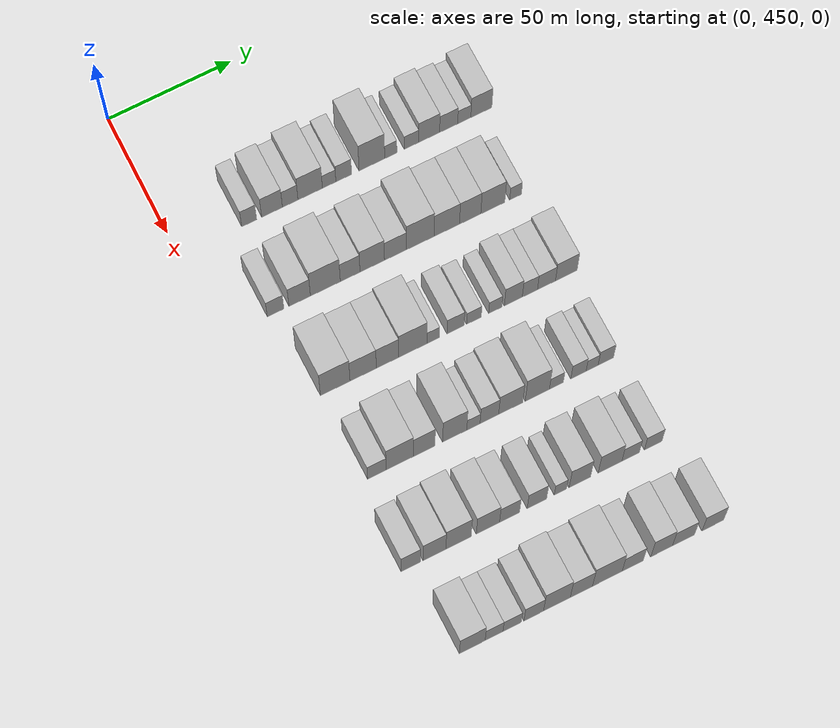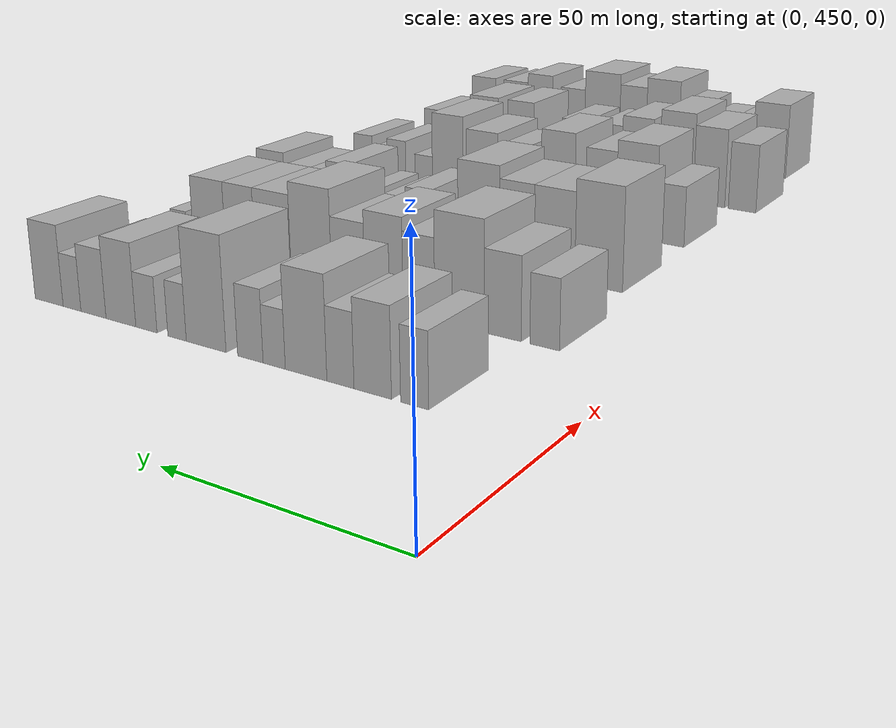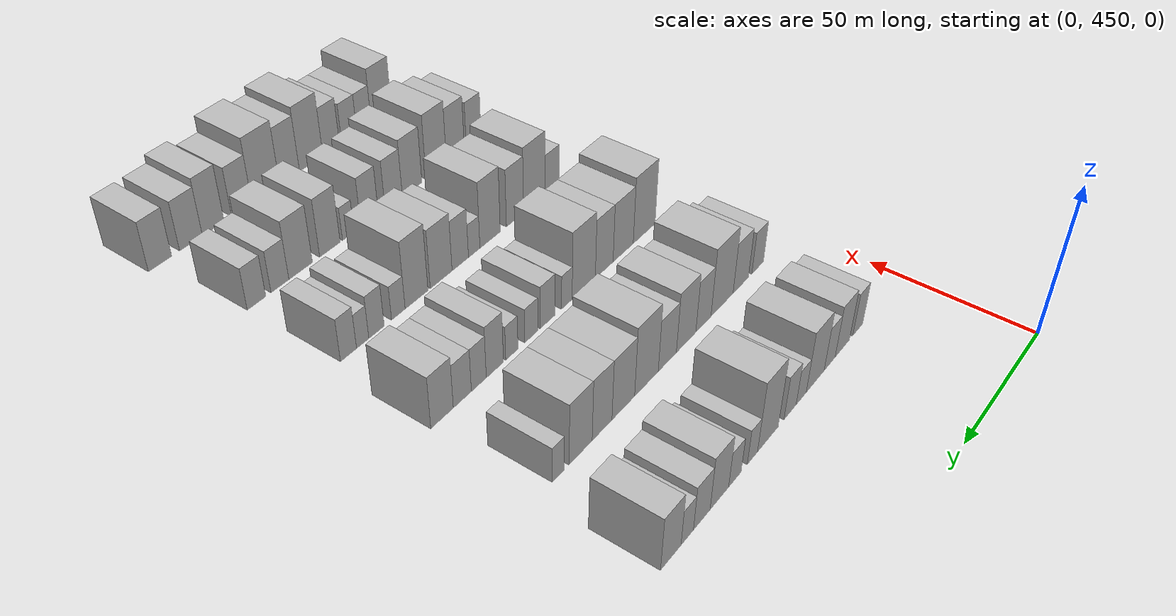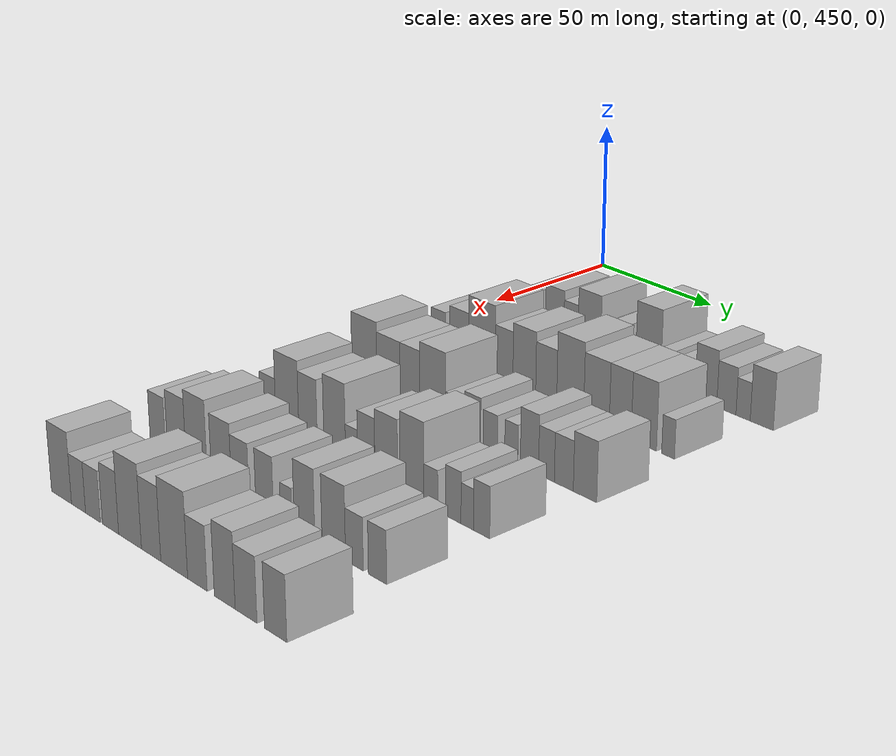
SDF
<sdf version="1.6">
 <world name="default">
  <model name="building_116">
   <static>1</static>
   <pose>50.0000 478.1447 0 0.000000 0.000000 0.000000</pose>
   <link name="link">
    <pose>0 0 7.50 0 0 0</pose>
    <collision name="collision"><geometry><box><size>20.0000 6.0451 15.0000</size></box></geometry></collision>
    <visual name="visual">
     <cast_shadows>0</cast_shadows>
     <geometry><box><size>20.0000 6.0451 15.0000</size></box></geometry>
     <material>
      <script>
       <uri>model://HANNAS_wall/materials/scripts</uri>
       <uri>model://HANNAS_wall/materials/textures</uri>
       <name>vrc/HANNAS_wall</name>
      </script>
     </material>
    </visual>
   </link>
  </model>
  <model name="building_117">
   <static>1</static>
   <pose>50.0000 487.3601 0 0.000000 0.000000 0.000000</pose>
   <link name="link">
    <pose>0 0 9.00 0 0 0</pose>
    <collision name="collision"><geometry><box><size>20.0000 8.3857 18.0000</size></box></geometry></collision>
    <visual name="visual">
     <cast_shadows>0</cast_shadows>
     <geometry><box><size>20.0000 8.3857 18.0000</size></box></geometry>
     <material>
      <script>
       <uri>model://HANNAS_wall/materials/scripts</uri>
       <uri>model://HANNAS_wall/materials/textures</uri>
       <name>vrc/HANNAS_wall</name>
      </script>
     </material>
    </visual>
   </link>
  </model>
  <model name="building_118">
   <static>1</static>
   <pose>50.0000 494.6896 0 0.000000 0.000000 0.000000</pose>
   <link name="link">
    <pose>0 0 7.50 0 0 0</pose>
    <collision name="collision"><geometry><box><size>20.0000 6.2733 15.0000</size></box></geometry></collision>
    <visual name="visual">
     <cast_shadows>0</cast_shadows>
     <geometry><box><size>20.0000 6.2733 15.0000</size></box></geometry>
     <material>
      <script>
       <uri>model://HANNAS_wall/materials/scripts</uri>
       <uri>model://HANNAS_wall/materials/textures</uri>
       <name>vrc/HANNAS_wall</name>
      </script>
     </material>
    </visual>
   </link>
  </model>
  <model name="building_119">
   <static>1</static>
   <pose>50.0000 502.7857 0 0.000000 0.000000 0.000000</pose>
   <link name="link">
    <pose>0 0 10.50 0 0 0</pose>
    <collision name="collision"><geometry><box><size>20.0000 9.9189 21.0000</size></box></geometry></collision>
    <visual name="visual">
     <cast_shadows>0</cast_shadows>
     <geometry><box><size>20.0000 9.9189 21.0000</size></box></geometry>
     <material>
      <script>
       <uri>model://HANNAS_wall/materials/scripts</uri>
       <uri>model://HANNAS_wall/materials/textures</uri>
       <name>vrc/HANNAS_wall</name>
      </script>
     </material>
    </visual>
   </link>
  </model>
  <model name="building_120">
   <static>1</static>
   <pose>50.0000 510.4785 0 0.000000 0.000000 0.000000</pose>
   <link name="link">
    <pose>0 0 6.00 0 0 0</pose>
    <collision name="collision"><geometry><box><size>20.0000 5.4667 12.0000</size></box></geometry></collision>
    <visual name="visual">
     <cast_shadows>0</cast_shadows>
     <geometry><box><size>20.0000 5.4667 12.0000</size></box></geometry>
     <material>
      <script>
       <uri>model://HANNAS_wall/materials/scripts</uri>
       <uri>model://HANNAS_wall/materials/textures</uri>
       <name>vrc/HANNAS_wall</name>
      </script>
     </material>
    </visual>
   </link>
  </model>
  <model name="building_121">
   <static>1</static>
   <pose>50.0000 516.4177 0 0.000000 0.000000 0.000000</pose>
   <link name="link">
    <pose>0 0 7.50 0 0 0</pose>
    <collision name="collision"><geometry><box><size>20.0000 6.4116 15.0000</size></box></geometry></collision>
    <visual name="visual">
     <cast_shadows>0</cast_shadows>
     <geometry><box><size>20.0000 6.4116 15.0000</size></box></geometry>
     <material>
      <script>
       <uri>model://HANNAS_wall/materials/scripts</uri>
       <uri>model://HANNAS_wall/materials/textures</uri>
       <name>vrc/HANNAS_wall</name>
      </script>
     </material>
    </visual>
   </link>
  </model>
  <model name="building_122">
   <static>1</static>
   <pose>50.0000 527.8635 0 0.000000 0.000000 0.000000</pose>
   <link name="link">
    <pose>0 0 12.00 0 0 0</pose>
    <collision name="collision"><geometry><box><size>20.0000 10.4800 24.0000</size></box></geometry></collision>
    <visual name="visual">
     <cast_shadows>0</cast_shadows>
     <geometry><box><size>20.0000 10.4800 24.0000</size></box></geometry>
     <material>
      <script>
       <uri>model://HANNAS_wall/materials/scripts</uri>
       <uri>model://HANNAS_wall/materials/textures</uri>
       <name>vrc/HANNAS_wall</name>
      </script>
     </material>
    </visual>
   </link>
  </model>
  <model name="building_123">
   <static>1</static>
   <pose>50.0000 535.6041 0 0.000000 0.000000 0.000000</pose>
   <link name="link">
    <pose>0 0 6.00 0 0 0</pose>
    <collision name="collision"><geometry><box><size>20.0000 5.0013 12.0000</size></box></geometry></collision>
    <visual name="visual">
     <cast_shadows>0</cast_shadows>
     <geometry><box><size>20.0000 5.0013 12.0000</size></box></geometry>
     <material>
      <script>
       <uri>model://HANNAS_wall/materials/scripts</uri>
       <uri>model://HANNAS_wall/materials/textures</uri>
       <name>vrc/HANNAS_wall</name>
      </script>
     </material>
    </visual>
   </link>
  </model>
  <model name="building_124">
   <static>1</static>
   <pose>50.0000 544.0753 0 0.000000 0.000000 0.000000</pose>
   <link name="link">
    <pose>0 0 6.00 0 0 0</pose>
    <collision name="collision"><geometry><box><size>20.0000 5.9410 12.0000</size></box></geometry></collision>
    <visual name="visual">
     <cast_shadows>0</cast_shadows>
     <geometry><box><size>20.0000 5.9410 12.0000</size></box></geometry>
     <material>
      <script>
       <uri>model://HANNAS_wall/materials/scripts</uri>
       <uri>model://HANNAS_wall/materials/textures</uri>
       <name>vrc/HANNAS_wall</name>
      </script>
     </material>
    </visual>
   </link>
  </model>
  <model name="building_125">
   <static>1</static>
   <pose>50.0000 551.3431 0 0.000000 0.000000 0.000000</pose>
   <link name="link">
    <pose>0 0 9.00 0 0 0</pose>
    <collision name="collision"><geometry><box><size>20.0000 8.5945 18.0000</size></box></geometry></collision>
    <visual name="visual">
     <cast_shadows>0</cast_shadows>
     <geometry><box><size>20.0000 8.5945 18.0000</size></box></geometry>
     <material>
      <script>
       <uri>model://HANNAS_wall/materials/scripts</uri>
       <uri>model://HANNAS_wall/materials/textures</uri>
       <name>vrc/HANNAS_wall</name>
      </script>
     </material>
    </visual>
   </link>
  </model>
  <model name="building_126">
   <static>1</static>
   <pose>50.0000 559.3598 0 0.000000 0.000000 0.000000</pose>
   <link name="link">
    <pose>0 0 7.50 0 0 0</pose>
    <collision name="collision"><geometry><box><size>20.0000 7.4389 15.0000</size></box></geometry></collision>
    <visual name="visual">
     <cast_shadows>0</cast_shadows>
     <geometry><box><size>20.0000 7.4389 15.0000</size></box></geometry>
     <material>
      <script>
       <uri>model://HANNAS_wall/materials/scripts</uri>
       <uri>model://HANNAS_wall/materials/textures</uri>
       <name>vrc/HANNAS_wall</name>
      </script>
     </material>
    </visual>
   </link>
  </model>
  <model name="building_127">
   <static>1</static>
   <pose>50.0000 565.7888 0 0.000000 0.000000 0.000000</pose>
   <link name="link">
    <pose>0 0 6.00 0 0 0</pose>
    <collision name="collision"><geometry><box><size>20.0000 5.4193 12.0000</size></box></geometry></collision>
    <visual name="visual">
     <cast_shadows>0</cast_shadows>
     <geometry><box><size>20.0000 5.4193 12.0000</size></box></geometry>
     <material>
      <script>
       <uri>model://HANNAS_wall/materials/scripts</uri>
       <uri>model://HANNAS_wall/materials/textures</uri>
       <name>vrc/HANNAS_wall</name>
      </script>
     </material>
    </visual>
   </link>
  </model>
  <model name="building_128">
   <static>1</static>
   <pose>50.0000 572.8296 0 0.000000 0.000000 0.000000</pose>
   <link name="link">
    <pose>0 0 9.00 0 0 0</pose>
    <collision name="collision"><geometry><box><size>20.0000 8.6622 18.0000</size></box></geometry></collision>
    <visual name="visual">
     <cast_shadows>0</cast_shadows>
     <geometry><box><size>20.0000 8.6622 18.0000</size></box></geometry>
     <material>
      <script>
       <uri>model://HANNAS_wall/materials/scripts</uri>
       <uri>model://HANNAS_wall/materials/textures</uri>
       <name>vrc/HANNAS_wall</name>
      </script>
     </material>
    </visual>
   </link>
  </model>
  <model name="building_244">
   <static>1</static>
   <pose>85.0000 471.5025 0 0.000000 0.000000 0.000000</pose>
   <link name="link">
    <pose>0 0 7.50 0 0 0</pose>
    <collision name="collision"><geometry><box><size>20.0000 6.6624 15.0000</size></box></geometry></collision>
    <visual name="visual">
     <cast_shadows>0</cast_shadows>
     <geometry><box><size>20.0000 6.6624 15.0000</size></box></geometry>
     <material>
      <script>
       <uri>model://HANNAS_wall/materials/scripts</uri>
       <uri>model://HANNAS_wall/materials/textures</uri>
       <name>vrc/HANNAS_wall</name>
      </script>
     </material>
    </visual>
   </link>
  </model>
  <model name="building_245">
   <static>1</static>
   <pose>85.0000 481.1322 0 0.000000 0.000000 0.000000</pose>
   <link name="link">
    <pose>0 0 9.00 0 0 0</pose>
    <collision name="collision"><geometry><box><size>20.0000 8.5969 18.0000</size></box></geometry></collision>
    <visual name="visual">
     <cast_shadows>0</cast_shadows>
     <geometry><box><size>20.0000 8.5969 18.0000</size></box></geometry>
     <material>
      <script>
       <uri>model://HANNAS_wall/materials/scripts</uri>
       <uri>model://HANNAS_wall/materials/textures</uri>
       <name>vrc/HANNAS_wall</name>
      </script>
     </material>
    </visual>
   </link>
  </model>
  <model name="building_246">
   <static>1</static>
   <pose>85.0000 491.4248 0 0.000000 0.000000 0.000000</pose>
   <link name="link">
    <pose>0 0 12.00 0 0 0</pose>
    <collision name="collision"><geometry><box><size>20.0000 11.9883 24.0000</size></box></geometry></collision>
    <visual name="visual">
     <cast_shadows>0</cast_shadows>
     <geometry><box><size>20.0000 11.9883 24.0000</size></box></geometry>
     <material>
      <script>
       <uri>model://HANNAS_wall/materials/scripts</uri>
       <uri>model://HANNAS_wall/materials/textures</uri>
       <name>vrc/HANNAS_wall</name>
      </script>
     </material>
    </visual>
   </link>
  </model>
  <model name="building_247">
   <static>1</static>
   <pose>85.0000 501.3819 0 0.000000 0.000000 0.000000</pose>
   <link name="link">
    <pose>0 0 9.00 0 0 0</pose>
    <collision name="collision"><geometry><box><size>20.0000 7.9257 18.0000</size></box></geometry></collision>
    <visual name="visual">
     <cast_shadows>0</cast_shadows>
     <geometry><box><size>20.0000 7.9257 18.0000</size></box></geometry>
     <material>
      <script>
       <uri>model://HANNAS_wall/materials/scripts</uri>
       <uri>model://HANNAS_wall/materials/textures</uri>
       <name>vrc/HANNAS_wall</name>
      </script>
     </material>
    </visual>
   </link>
  </model>
  <model name="building_248">
   <static>1</static>
   <pose>85.0000 510.2869 0 0.000000 0.000000 0.000000</pose>
   <link name="link">
    <pose>0 0 10.50 0 0 0</pose>
    <collision name="collision"><geometry><box><size>20.0000 9.8843 21.0000</size></box></geometry></collision>
    <visual name="visual">
     <cast_shadows>0</cast_shadows>
     <geometry><box><size>20.0000 9.8843 21.0000</size></box></geometry>
     <material>
      <script>
       <uri>model://HANNAS_wall/materials/scripts</uri>
       <uri>model://HANNAS_wall/materials/textures</uri>
       <name>vrc/HANNAS_wall</name>
      </script>
     </material>
    </visual>
   </link>
  </model>
  <model name="building_249">
   <static>1</static>
   <pose>85.0000 519.6871 0 0.000000 0.000000 0.000000</pose>
   <link name="link">
    <pose>0 0 9.00 0 0 0</pose>
    <collision name="collision"><geometry><box><size>20.0000 8.9161 18.0000</size></box></geometry></collision>
    <visual name="visual">
     <cast_shadows>0</cast_shadows>
     <geometry><box><size>20.0000 8.9161 18.0000</size></box></geometry>
     <material>
      <script>
       <uri>model://HANNAS_wall/materials/scripts</uri>
       <uri>model://HANNAS_wall/materials/textures</uri>
       <name>vrc/HANNAS_wall</name>
      </script>
     </material>
    </visual>
   </link>
  </model>
  <model name="building_250">
   <static>1</static>
   <pose>85.0000 529.7424 0 0.000000 0.000000 0.000000</pose>
   <link name="link">
    <pose>0 0 12.00 0 0 0</pose>
    <collision name="collision"><geometry><box><size>20.0000 11.1945 24.0000</size></box></geometry></collision>
    <visual name="visual">
     <cast_shadows>0</cast_shadows>
     <geometry><box><size>20.0000 11.1945 24.0000</size></box></geometry>
     <material>
      <script>
       <uri>model://HANNAS_wall/materials/scripts</uri>
       <uri>model://HANNAS_wall/materials/textures</uri>
       <name>vrc/HANNAS_wall</name>
      </script>
     </material>
    </visual>
   </link>
  </model>
  <model name="building_251">
   <static>1</static>
   <pose>85.0000 540.5024 0 0.000000 0.000000 0.000000</pose>
   <link name="link">
    <pose>0 0 10.50 0 0 0</pose>
    <collision name="collision"><geometry><box><size>20.0000 10.3254 21.0000</size></box></geometry></collision>
    <visual name="visual">
     <cast_shadows>0</cast_shadows>
     <geometry><box><size>20.0000 10.3254 21.0000</size></box></geometry>
     <material>
      <script>
       <uri>model://HANNAS_wall/materials/scripts</uri>
       <uri>model://HANNAS_wall/materials/textures</uri>
       <name>vrc/HANNAS_wall</name>
      </script>
     </material>
    </visual>
   </link>
  </model>
  <model name="building_252">
   <static>1</static>
   <pose>85.0000 550.0165 0 0.000000 0.000000 0.000000</pose>
   <link name="link">
    <pose>0 0 10.50 0 0 0</pose>
    <collision name="collision"><geometry><box><size>20.0000 8.7030 21.0000</size></box></geometry></collision>
    <visual name="visual">
     <cast_shadows>0</cast_shadows>
     <geometry><box><size>20.0000 8.7030 21.0000</size></box></geometry>
     <material>
      <script>
       <uri>model://HANNAS_wall/materials/scripts</uri>
       <uri>model://HANNAS_wall/materials/textures</uri>
       <name>vrc/HANNAS_wall</name>
      </script>
     </material>
    </visual>
   </link>
  </model>
  <model name="building_253">
   <static>1</static>
   <pose>85.0000 559.2678 0 0.000000 0.000000 0.000000</pose>
   <link name="link">
    <pose>0 0 10.50 0 0 0</pose>
    <collision name="collision"><geometry><box><size>20.0000 9.7996 21.0000</size></box></geometry></collision>
    <visual name="visual">
     <cast_shadows>0</cast_shadows>
     <geometry><box><size>20.0000 9.7996 21.0000</size></box></geometry>
     <material>
      <script>
       <uri>model://HANNAS_wall/materials/scripts</uri>
       <uri>model://HANNAS_wall/materials/textures</uri>
       <name>vrc/HANNAS_wall</name>
      </script>
     </material>
    </visual>
   </link>
  </model>
  <model name="building_254">
   <static>1</static>
   <pose>85.0000 568.5835 0 0.000000 0.000000 0.000000</pose>
   <link name="link">
    <pose>0 0 6.00 0 0 0</pose>
    <collision name="collision"><geometry><box><size>20.0000 4.8316 12.0000</size></box></geometry></collision>
    <visual name="visual">
     <cast_shadows>0</cast_shadows>
     <geometry><box><size>20.0000 4.8316 12.0000</size></box></geometry>
     <material>
      <script>
       <uri>model://HANNAS_wall/materials/scripts</uri>
       <uri>model://HANNAS_wall/materials/textures</uri>
       <name>vrc/HANNAS_wall</name>
      </script>
     </material>
    </visual>
   </link>
  </model>
  <model name="building_371">
   <static>1</static>
   <pose>120.0000 477.8061 0 0.000000 0.000000 0.000000</pose>
   <link name="link">
    <pose>0 0 12.00 0 0 0</pose>
    <collision name="collision"><geometry><box><size>20.0000 11.7570 24.0000</size></box></geometry></collision>
    <visual name="visual">
     <cast_shadows>0</cast_shadows>
     <geometry><box><size>20.0000 11.7570 24.0000</size></box></geometry>
     <material>
      <script>
       <uri>model://HANNAS_wall/materials/scripts</uri>
       <uri>model://HANNAS_wall/materials/textures</uri>
       <name>vrc/HANNAS_wall</name>
      </script>
     </material>
    </visual>
   </link>
  </model>
  <model name="building_372">
   <static>1</static>
   <pose>120.0000 488.9321 0 0.000000 0.000000 0.000000</pose>
   <link name="link">
    <pose>0 0 10.50 0 0 0</pose>
    <collision name="collision"><geometry><box><size>20.0000 10.4951 21.0000</size></box></geometry></collision>
    <visual name="visual">
     <cast_shadows>0</cast_shadows>
     <geometry><box><size>20.0000 10.4951 21.0000</size></box></geometry>
     <material>
      <script>
       <uri>model://HANNAS_wall/materials/scripts</uri>
       <uri>model://HANNAS_wall/materials/textures</uri>
       <name>vrc/HANNAS_wall</name>
      </script>
     </material>
    </visual>
   </link>
  </model>
  <model name="building_373">
   <static>1</static>
   <pose>120.0000 498.6604 0 0.000000 0.000000 0.000000</pose>
   <link name="link">
    <pose>0 0 10.50 0 0 0</pose>
    <collision name="collision"><geometry><box><size>20.0000 8.9615 21.0000</size></box></geometry></collision>
    <visual name="visual">
     <cast_shadows>0</cast_shadows>
     <geometry><box><size>20.0000 8.9615 21.0000</size></box></geometry>
     <material>
      <script>
       <uri>model://HANNAS_wall/materials/scripts</uri>
       <uri>model://HANNAS_wall/materials/textures</uri>
       <name>vrc/HANNAS_wall</name>
      </script>
     </material>
    </visual>
   </link>
  </model>
  <model name="building_374">
   <static>1</static>
   <pose>120.0000 508.8037 0 0.000000 0.000000 0.000000</pose>
   <link name="link">
    <pose>0 0 12.00 0 0 0</pose>
    <collision name="collision"><geometry><box><size>20.0000 11.3251 24.0000</size></box></geometry></collision>
    <visual name="visual">
     <cast_shadows>0</cast_shadows>
     <geometry><box><size>20.0000 11.3251 24.0000</size></box></geometry>
     <material>
      <script>
       <uri>model://HANNAS_wall/materials/scripts</uri>
       <uri>model://HANNAS_wall/materials/textures</uri>
       <name>vrc/HANNAS_wall</name>
      </script>
     </material>
    </visual>
   </link>
  </model>
  <model name="building_375">
   <static>1</static>
   <pose>120.0000 516.9712 0 0.000000 0.000000 0.000000</pose>
   <link name="link">
    <pose>0 0 6.00 0 0 0</pose>
    <collision name="collision"><geometry><box><size>20.0000 5.0100 12.0000</size></box></geometry></collision>
    <visual name="visual">
     <cast_shadows>0</cast_shadows>
     <geometry><box><size>20.0000 5.0100 12.0000</size></box></geometry>
     <material>
      <script>
       <uri>model://HANNAS_wall/materials/scripts</uri>
       <uri>model://HANNAS_wall/materials/textures</uri>
       <name>vrc/HANNAS_wall</name>
      </script>
     </material>
    </visual>
   </link>
  </model>
  <model name="building_376">
   <static>1</static>
   <pose>120.0000 525.9254 0 0.000000 0.000000 0.000000</pose>
   <link name="link">
    <pose>0 0 7.50 0 0 0</pose>
    <collision name="collision"><geometry><box><size>20.0000 6.8982 15.0000</size></box></geometry></collision>
    <visual name="visual">
     <cast_shadows>0</cast_shadows>
     <geometry><box><size>20.0000 6.8982 15.0000</size></box></geometry>
     <material>
      <script>
       <uri>model://HANNAS_wall/materials/scripts</uri>
       <uri>model://HANNAS_wall/materials/textures</uri>
       <name>vrc/HANNAS_wall</name>
      </script>
     </material>
    </visual>
   </link>
  </model>
  <model name="building_377">
   <static>1</static>
   <pose>120.0000 533.3301 0 0.000000 0.000000 0.000000</pose>
   <link name="link">
    <pose>0 0 6.00 0 0 0</pose>
    <collision name="collision"><geometry><box><size>20.0000 5.9112 12.0000</size></box></geometry></collision>
    <visual name="visual">
     <cast_shadows>0</cast_shadows>
     <geometry><box><size>20.0000 5.9112 12.0000</size></box></geometry>
     <material>
      <script>
       <uri>model://HANNAS_wall/materials/scripts</uri>
       <uri>model://HANNAS_wall/materials/textures</uri>
       <name>vrc/HANNAS_wall</name>
      </script>
     </material>
    </visual>
   </link>
  </model>
  <model name="building_378">
   <static>1</static>
   <pose>120.0000 541.9543 0 0.000000 0.000000 0.000000</pose>
   <link name="link">
    <pose>0 0 6.00 0 0 0</pose>
    <collision name="collision"><geometry><box><size>20.0000 5.3372 12.0000</size></box></geometry></collision>
    <visual name="visual">
     <cast_shadows>0</cast_shadows>
     <geometry><box><size>20.0000 5.3372 12.0000</size></box></geometry>
     <material>
      <script>
       <uri>model://HANNAS_wall/materials/scripts</uri>
       <uri>model://HANNAS_wall/materials/textures</uri>
       <name>vrc/HANNAS_wall</name>
      </script>
     </material>
    </visual>
   </link>
  </model>
  <model name="building_379">
   <static>1</static>
   <pose>120.0000 549.2601 0 0.000000 0.000000 0.000000</pose>
   <link name="link">
    <pose>0 0 9.00 0 0 0</pose>
    <collision name="collision"><geometry><box><size>20.0000 7.2745 18.0000</size></box></geometry></collision>
    <visual name="visual">
     <cast_shadows>0</cast_shadows>
     <geometry><box><size>20.0000 7.2745 18.0000</size></box></geometry>
     <material>
      <script>
       <uri>model://HANNAS_wall/materials/scripts</uri>
       <uri>model://HANNAS_wall/materials/textures</uri>
       <name>vrc/HANNAS_wall</name>
      </script>
     </material>
    </visual>
   </link>
  </model>
  <model name="building_380">
   <static>1</static>
   <pose>120.0000 555.9813 0 0.000000 0.000000 0.000000</pose>
   <link name="link">
    <pose>0 0 7.50 0 0 0</pose>
    <collision name="collision"><geometry><box><size>20.0000 6.1678 15.0000</size></box></geometry></collision>
    <visual name="visual">
     <cast_shadows>0</cast_shadows>
     <geometry><box><size>20.0000 6.1678 15.0000</size></box></geometry>
     <material>
      <script>
       <uri>model://HANNAS_wall/materials/scripts</uri>
       <uri>model://HANNAS_wall/materials/textures</uri>
       <name>vrc/HANNAS_wall</name>
      </script>
     </material>
    </visual>
   </link>
  </model>
  <model name="building_381">
   <static>1</static>
   <pose>120.0000 562.7178 0 0.000000 0.000000 0.000000</pose>
   <link name="link">
    <pose>0 0 7.50 0 0 0</pose>
    <collision name="collision"><geometry><box><size>20.0000 7.3051 15.0000</size></box></geometry></collision>
    <visual name="visual">
     <cast_shadows>0</cast_shadows>
     <geometry><box><size>20.0000 7.3051 15.0000</size></box></geometry>
     <material>
      <script>
       <uri>model://HANNAS_wall/materials/scripts</uri>
       <uri>model://HANNAS_wall/materials/textures</uri>
       <name>vrc/HANNAS_wall</name>
      </script>
     </material>
    </visual>
   </link>
  </model>
  <model name="building_382">
   <static>1</static>
   <pose>120.0000 570.7891 0 0.000000 0.000000 0.000000</pose>
   <link name="link">
    <pose>0 0 9.00 0 0 0</pose>
    <collision name="collision"><geometry><box><size>20.0000 8.8374 18.0000</size></box></geometry></collision>
    <visual name="visual">
     <cast_shadows>0</cast_shadows>
     <geometry><box><size>20.0000 8.8374 18.0000</size></box></geometry>
     <material>
      <script>
       <uri>model://HANNAS_wall/materials/scripts</uri>
       <uri>model://HANNAS_wall/materials/textures</uri>
       <name>vrc/HANNAS_wall</name>
      </script>
     </material>
    </visual>
   </link>
  </model>
  <model name="building_500">
   <static>1</static>
   <pose>155.0000 476.6319 0 0.000000 0.000000 0.000000</pose>
   <link name="link">
    <pose>0 0 7.50 0 0 0</pose>
    <collision name="collision"><geometry><box><size>20.0000 7.3329 15.0000</size></box></geometry></collision>
    <visual name="visual">
     <cast_shadows>0</cast_shadows>
     <geometry><box><size>20.0000 7.3329 15.0000</size></box></geometry>
     <material>
      <script>
       <uri>model://HANNAS_wall/materials/scripts</uri>
       <uri>model://HANNAS_wall/materials/textures</uri>
       <name>vrc/HANNAS_wall</name>
      </script>
     </material>
    </visual>
   </link>
  </model>
  <model name="building_501">
   <static>1</static>
   <pose>155.0000 485.7222 0 0.000000 0.000000 0.000000</pose>
   <link name="link">
    <pose>0 0 12.00 0 0 0</pose>
    <collision name="collision"><geometry><box><size>20.0000 10.8477 24.0000</size></box></geometry></collision>
    <visual name="visual">
     <cast_shadows>0</cast_shadows>
     <geometry><box><size>20.0000 10.8477 24.0000</size></box></geometry>
     <material>
      <script>
       <uri>model://HANNAS_wall/materials/scripts</uri>
       <uri>model://HANNAS_wall/materials/textures</uri>
       <name>vrc/HANNAS_wall</name>
      </script>
     </material>
    </visual>
   </link>
  </model>
  <model name="building_502">
   <static>1</static>
   <pose>155.0000 495.3862 0 0.000000 0.000000 0.000000</pose>
   <link name="link">
    <pose>0 0 10.50 0 0 0</pose>
    <collision name="collision"><geometry><box><size>20.0000 8.4804 21.0000</size></box></geometry></collision>
    <visual name="visual">
     <cast_shadows>0</cast_shadows>
     <geometry><box><size>20.0000 8.4804 21.0000</size></box></geometry>
     <material>
      <script>
       <uri>model://HANNAS_wall/materials/scripts</uri>
       <uri>model://HANNAS_wall/materials/textures</uri>
       <name>vrc/HANNAS_wall</name>
      </script>
     </material>
    </visual>
   </link>
  </model>
  <model name="building_503">
   <static>1</static>
   <pose>155.0000 507.4417 0 0.000000 0.000000 0.000000</pose>
   <link name="link">
    <pose>0 0 12.00 0 0 0</pose>
    <collision name="collision"><geometry><box><size>20.0000 9.6305 24.0000</size></box></geometry></collision>
    <visual name="visual">
     <cast_shadows>0</cast_shadows>
     <geometry><box><size>20.0000 9.6305 24.0000</size></box></geometry>
     <material>
      <script>
       <uri>model://HANNAS_wall/materials/scripts</uri>
       <uri>model://HANNAS_wall/materials/textures</uri>
       <name>vrc/HANNAS_wall</name>
      </script>
     </material>
    </visual>
   </link>
  </model>
  <model name="building_504">
   <static>1</static>
   <pose>155.0000 514.9035 0 0.000000 0.000000 0.000000</pose>
   <link name="link">
    <pose>0 0 6.00 0 0 0</pose>
    <collision name="collision"><geometry><box><size>20.0000 5.2932 12.0000</size></box></geometry></collision>
    <visual name="visual">
     <cast_shadows>0</cast_shadows>
     <geometry><box><size>20.0000 5.2932 12.0000</size></box></geometry>
     <material>
      <script>
       <uri>model://HANNAS_wall/materials/scripts</uri>
       <uri>model://HANNAS_wall/materials/textures</uri>
       <name>vrc/HANNAS_wall</name>
      </script>
     </material>
    </visual>
   </link>
  </model>
  <model name="building_505">
   <static>1</static>
   <pose>155.0000 521.2704 0 0.000000 0.000000 0.000000</pose>
   <link name="link">
    <pose>0 0 9.00 0 0 0</pose>
    <collision name="collision"><geometry><box><size>20.0000 7.4405 18.0000</size></box></geometry></collision>
    <visual name="visual">
     <cast_shadows>0</cast_shadows>
     <geometry><box><size>20.0000 7.4405 18.0000</size></box></geometry>
     <material>
      <script>
       <uri>model://HANNAS_wall/materials/scripts</uri>
       <uri>model://HANNAS_wall/materials/textures</uri>
       <name>vrc/HANNAS_wall</name>
      </script>
     </material>
    </visual>
   </link>
  </model>
  <model name="building_506">
   <static>1</static>
   <pose>155.0000 529.7941 0 0.000000 0.000000 0.000000</pose>
   <link name="link">
    <pose>0 0 10.50 0 0 0</pose>
    <collision name="collision"><geometry><box><size>20.0000 9.6070 21.0000</size></box></geometry></collision>
    <visual name="visual">
     <cast_shadows>0</cast_shadows>
     <geometry><box><size>20.0000 9.6070 21.0000</size></box></geometry>
     <material>
      <script>
       <uri>model://HANNAS_wall/materials/scripts</uri>
       <uri>model://HANNAS_wall/materials/textures</uri>
       <name>vrc/HANNAS_wall</name>
      </script>
     </material>
    </visual>
   </link>
  </model>
  <model name="building_507">
   <static>1</static>
   <pose>155.0000 540.4518 0 0.000000 0.000000 0.000000</pose>
   <link name="link">
    <pose>0 0 12.00 0 0 0</pose>
    <collision name="collision"><geometry><box><size>20.0000 9.7084 24.0000</size></box></geometry></collision>
    <visual name="visual">
     <cast_shadows>0</cast_shadows>
     <geometry><box><size>20.0000 9.7084 24.0000</size></box></geometry>
     <material>
      <script>
       <uri>model://HANNAS_wall/materials/scripts</uri>
       <uri>model://HANNAS_wall/materials/textures</uri>
       <name>vrc/HANNAS_wall</name>
      </script>
     </material>
    </visual>
   </link>
  </model>
  <model name="building_508">
   <static>1</static>
   <pose>155.0000 548.1192 0 0.000000 0.000000 0.000000</pose>
   <link name="link">
    <pose>0 0 6.00 0 0 0</pose>
    <collision name="collision"><geometry><box><size>20.0000 5.6263 12.0000</size></box></geometry></collision>
    <visual name="visual">
     <cast_shadows>0</cast_shadows>
     <geometry><box><size>20.0000 5.6263 12.0000</size></box></geometry>
     <material>
      <script>
       <uri>model://HANNAS_wall/materials/scripts</uri>
       <uri>model://HANNAS_wall/materials/textures</uri>
       <name>vrc/HANNAS_wall</name>
      </script>
     </material>
    </visual>
   </link>
  </model>
  <model name="building_509">
   <static>1</static>
   <pose>155.0000 557.0196 0 0.000000 0.000000 0.000000</pose>
   <link name="link">
    <pose>0 0 7.50 0 0 0</pose>
    <collision name="collision"><geometry><box><size>20.0000 6.1745 15.0000</size></box></geometry></collision>
    <visual name="visual">
     <cast_shadows>0</cast_shadows>
     <geometry><box><size>20.0000 6.1745 15.0000</size></box></geometry>
     <material>
      <script>
       <uri>model://HANNAS_wall/materials/scripts</uri>
       <uri>model://HANNAS_wall/materials/textures</uri>
       <name>vrc/HANNAS_wall</name>
      </script>
     </material>
    </visual>
   </link>
  </model>
  <model name="building_510">
   <static>1</static>
   <pose>155.0000 562.5319 0 0.000000 0.000000 0.000000</pose>
   <link name="link">
    <pose>0 0 6.00 0 0 0</pose>
    <collision name="collision"><geometry><box><size>20.0000 4.8501 12.0000</size></box></geometry></collision>
    <visual name="visual">
     <cast_shadows>0</cast_shadows>
     <geometry><box><size>20.0000 4.8501 12.0000</size></box></geometry>
     <material>
      <script>
       <uri>model://HANNAS_wall/materials/scripts</uri>
       <uri>model://HANNAS_wall/materials/textures</uri>
       <name>vrc/HANNAS_wall</name>
      </script>
     </material>
    </visual>
   </link>
  </model>
  <model name="building_511">
   <static>1</static>
   <pose>155.0000 568.0706 0 0.000000 0.000000 0.000000</pose>
   <link name="link">
    <pose>0 0 7.50 0 0 0</pose>
    <collision name="collision"><geometry><box><size>20.0000 6.2272 15.0000</size></box></geometry></collision>
    <visual name="visual">
     <cast_shadows>0</cast_shadows>
     <geometry><box><size>20.0000 6.2272 15.0000</size></box></geometry>
     <material>
      <script>
       <uri>model://HANNAS_wall/materials/scripts</uri>
       <uri>model://HANNAS_wall/materials/textures</uri>
       <name>vrc/HANNAS_wall</name>
      </script>
     </material>
    </visual>
   </link>
  </model>
  <model name="building_623">
   <static>1</static>
   <pose>190.0000 472.1131 0 0.000000 0.000000 0.000000</pose>
   <link name="link">
    <pose>0 0 9.00 0 0 0</pose>
    <collision name="collision"><geometry><box><size>20.0000 7.5656 18.0000</size></box></geometry></collision>
    <visual name="visual">
     <cast_shadows>0</cast_shadows>
     <geometry><box><size>20.0000 7.5656 18.0000</size></box></geometry>
     <material>
      <script>
       <uri>model://HANNAS_wall/materials/scripts</uri>
       <uri>model://HANNAS_wall/materials/textures</uri>
       <name>vrc/HANNAS_wall</name>
      </script>
     </material>
    </visual>
   </link>
  </model>
  <model name="building_624">
   <static>1</static>
   <pose>190.0000 481.3770 0 0.000000 0.000000 0.000000</pose>
   <link name="link">
    <pose>0 0 10.50 0 0 0</pose>
    <collision name="collision"><geometry><box><size>20.0000 8.9622 21.0000</size></box></geometry></collision>
    <visual name="visual">
     <cast_shadows>0</cast_shadows>
     <geometry><box><size>20.0000 8.9622 21.0000</size></box></geometry>
     <material>
      <script>
       <uri>model://HANNAS_wall/materials/scripts</uri>
       <uri>model://HANNAS_wall/materials/textures</uri>
       <name>vrc/HANNAS_wall</name>
      </script>
     </material>
    </visual>
   </link>
  </model>
  <model name="building_625">
   <static>1</static>
   <pose>190.0000 490.8366 0 0.000000 0.000000 0.000000</pose>
   <link name="link">
    <pose>0 0 12.00 0 0 0</pose>
    <collision name="collision"><geometry><box><size>20.0000 9.9570 24.0000</size></box></geometry></collision>
    <visual name="visual">
     <cast_shadows>0</cast_shadows>
     <geometry><box><size>20.0000 9.9570 24.0000</size></box></geometry>
     <material>
      <script>
       <uri>model://HANNAS_wall/materials/scripts</uri>
       <uri>model://HANNAS_wall/materials/textures</uri>
       <name>vrc/HANNAS_wall</name>
      </script>
     </material>
    </visual>
   </link>
  </model>
  <model name="building_626">
   <static>1</static>
   <pose>190.0000 502.4020 0 0.000000 0.000000 0.000000</pose>
   <link name="link">
    <pose>0 0 10.50 0 0 0</pose>
    <collision name="collision"><geometry><box><size>20.0000 9.1738 21.0000</size></box></geometry></collision>
    <visual name="visual">
     <cast_shadows>0</cast_shadows>
     <geometry><box><size>20.0000 9.1738 21.0000</size></box></geometry>
     <material>
      <script>
       <uri>model://HANNAS_wall/materials/scripts</uri>
       <uri>model://HANNAS_wall/materials/textures</uri>
       <name>vrc/HANNAS_wall</name>
      </script>
     </material>
    </visual>
   </link>
  </model>
  <model name="building_627">
   <static>1</static>
   <pose>190.0000 510.9473 0 0.000000 0.000000 0.000000</pose>
   <link name="link">
    <pose>0 0 9.00 0 0 0</pose>
    <collision name="collision"><geometry><box><size>20.0000 7.9167 18.0000</size></box></geometry></collision>
    <visual name="visual">
     <cast_shadows>0</cast_shadows>
     <geometry><box><size>20.0000 7.9167 18.0000</size></box></geometry>
     <material>
      <script>
       <uri>model://HANNAS_wall/materials/scripts</uri>
       <uri>model://HANNAS_wall/materials/textures</uri>
       <name>vrc/HANNAS_wall</name>
      </script>
     </material>
    </visual>
   </link>
  </model>
  <model name="building_628">
   <static>1</static>
   <pose>190.0000 521.7784 0 0.000000 0.000000 0.000000</pose>
   <link name="link">
    <pose>0 0 9.00 0 0 0</pose>
    <collision name="collision"><geometry><box><size>20.0000 7.7455 18.0000</size></box></geometry></collision>
    <visual name="visual">
     <cast_shadows>0</cast_shadows>
     <geometry><box><size>20.0000 7.7455 18.0000</size></box></geometry>
     <material>
      <script>
       <uri>model://HANNAS_wall/materials/scripts</uri>
       <uri>model://HANNAS_wall/materials/textures</uri>
       <name>vrc/HANNAS_wall</name>
      </script>
     </material>
    </visual>
   </link>
  </model>
  <model name="building_629">
   <static>1</static>
   <pose>190.0000 531.1164 0 0.000000 0.000000 0.000000</pose>
   <link name="link">
    <pose>0 0 6.00 0 0 0</pose>
    <collision name="collision"><geometry><box><size>20.0000 4.9306 12.0000</size></box></geometry></collision>
    <visual name="visual">
     <cast_shadows>0</cast_shadows>
     <geometry><box><size>20.0000 4.9306 12.0000</size></box></geometry>
     <material>
      <script>
       <uri>model://HANNAS_wall/materials/scripts</uri>
       <uri>model://HANNAS_wall/materials/textures</uri>
       <name>vrc/HANNAS_wall</name>
      </script>
     </material>
    </visual>
   </link>
  </model>
  <model name="building_630">
   <static>1</static>
   <pose>190.0000 538.8677 0 0.000000 0.000000 0.000000</pose>
   <link name="link">
    <pose>0 0 10.50 0 0 0</pose>
    <collision name="collision"><geometry><box><size>20.0000 8.5720 21.0000</size></box></geometry></collision>
    <visual name="visual">
     <cast_shadows>0</cast_shadows>
     <geometry><box><size>20.0000 8.5720 21.0000</size></box></geometry>
     <material>
      <script>
       <uri>model://HANNAS_wall/materials/scripts</uri>
       <uri>model://HANNAS_wall/materials/textures</uri>
       <name>vrc/HANNAS_wall</name>
      </script>
     </material>
    </visual>
   </link>
  </model>
  <model name="building_631">
   <static>1</static>
   <pose>190.0000 550.9032 0 0.000000 0.000000 0.000000</pose>
   <link name="link">
    <pose>0 0 10.50 0 0 0</pose>
    <collision name="collision"><geometry><box><size>20.0000 9.4991 21.0000</size></box></geometry></collision>
    <visual name="visual">
     <cast_shadows>0</cast_shadows>
     <geometry><box><size>20.0000 9.4991 21.0000</size></box></geometry>
     <material>
      <script>
       <uri>model://HANNAS_wall/materials/scripts</uri>
       <uri>model://HANNAS_wall/materials/textures</uri>
       <name>vrc/HANNAS_wall</name>
      </script>
     </material>
    </visual>
   </link>
  </model>
  <model name="building_632">
   <static>1</static>
   <pose>190.0000 559.1610 0 0.000000 0.000000 0.000000</pose>
   <link name="link">
    <pose>0 0 7.50 0 0 0</pose>
    <collision name="collision"><geometry><box><size>20.0000 7.0164 15.0000</size></box></geometry></collision>
    <visual name="visual">
     <cast_shadows>0</cast_shadows>
     <geometry><box><size>20.0000 7.0164 15.0000</size></box></geometry>
     <material>
      <script>
       <uri>model://HANNAS_wall/materials/scripts</uri>
       <uri>model://HANNAS_wall/materials/textures</uri>
       <name>vrc/HANNAS_wall</name>
      </script>
     </material>
    </visual>
   </link>
  </model>
  <model name="building_633">
   <static>1</static>
   <pose>190.0000 568.2097 0 0.000000 0.000000 0.000000</pose>
   <link name="link">
    <pose>0 0 7.50 0 0 0</pose>
    <collision name="collision"><geometry><box><size>20.0000 7.0810 15.0000</size></box></geometry></collision>
    <visual name="visual">
     <cast_shadows>0</cast_shadows>
     <geometry><box><size>20.0000 7.0810 15.0000</size></box></geometry>
     <material>
      <script>
       <uri>model://HANNAS_wall/materials/scripts</uri>
       <uri>model://HANNAS_wall/materials/textures</uri>
       <name>vrc/HANNAS_wall</name>
      </script>
     </material>
    </visual>
   </link>
  </model>
  <model name="building_755">
   <static>1</static>
   <pose>225.0000 478.0245 0 0.000000 0.000000 0.000000</pose>
   <link name="link">
    <pose>0 0 10.50 0 0 0</pose>
    <collision name="collision"><geometry><box><size>20.0000 10.0492 21.0000</size></box></geometry></collision>
    <visual name="visual">
     <cast_shadows>0</cast_shadows>
     <geometry><box><size>20.0000 10.0492 21.0000</size></box></geometry>
     <material>
      <script>
       <uri>model://HANNAS_wall/materials/scripts</uri>
       <uri>model://HANNAS_wall/materials/textures</uri>
       <name>vrc/HANNAS_wall</name>
      </script>
     </material>
    </visual>
   </link>
  </model>
  <model name="building_756">
   <static>1</static>
   <pose>225.0000 486.5080 0 0.000000 0.000000 0.000000</pose>
   <link name="link">
    <pose>0 0 7.50 0 0 0</pose>
    <collision name="collision"><geometry><box><size>20.0000 6.9179 15.0000</size></box></geometry></collision>
    <visual name="visual">
     <cast_shadows>0</cast_shadows>
     <geometry><box><size>20.0000 6.9179 15.0000</size></box></geometry>
     <material>
      <script>
       <uri>model://HANNAS_wall/materials/scripts</uri>
       <uri>model://HANNAS_wall/materials/textures</uri>
       <name>vrc/HANNAS_wall</name>
      </script>
     </material>
    </visual>
   </link>
  </model>
  <model name="building_757">
   <static>1</static>
   <pose>225.0000 493.5592 0 0.000000 0.000000 0.000000</pose>
   <link name="link">
    <pose>0 0 7.50 0 0 0</pose>
    <collision name="collision"><geometry><box><size>20.0000 7.1844 15.0000</size></box></geometry></collision>
    <visual name="visual">
     <cast_shadows>0</cast_shadows>
     <geometry><box><size>20.0000 7.1844 15.0000</size></box></geometry>
     <material>
      <script>
       <uri>model://HANNAS_wall/materials/scripts</uri>
       <uri>model://HANNAS_wall/materials/textures</uri>
       <name>vrc/HANNAS_wall</name>
      </script>
     </material>
    </visual>
   </link>
  </model>
  <model name="building_758">
   <static>1</static>
   <pose>225.0000 501.9891 0 0.000000 0.000000 0.000000</pose>
   <link name="link">
    <pose>0 0 9.00 0 0 0</pose>
    <collision name="collision"><geometry><box><size>20.0000 7.6754 18.0000</size></box></geometry></collision>
    <visual name="visual">
     <cast_shadows>0</cast_shadows>
     <geometry><box><size>20.0000 7.6754 18.0000</size></box></geometry>
     <material>
      <script>
       <uri>model://HANNAS_wall/materials/scripts</uri>
       <uri>model://HANNAS_wall/materials/textures</uri>
       <name>vrc/HANNAS_wall</name>
      </script>
     </material>
    </visual>
   </link>
  </model>
  <model name="building_759">
   <static>1</static>
   <pose>225.0000 511.0922 0 0.000000 0.000000 0.000000</pose>
   <link name="link">
    <pose>0 0 12.00 0 0 0</pose>
    <collision name="collision"><geometry><box><size>20.0000 10.5308 24.0000</size></box></geometry></collision>
    <visual name="visual">
     <cast_shadows>0</cast_shadows>
     <geometry><box><size>20.0000 10.5308 24.0000</size></box></geometry>
     <material>
      <script>
       <uri>model://HANNAS_wall/materials/scripts</uri>
       <uri>model://HANNAS_wall/materials/textures</uri>
       <name>vrc/HANNAS_wall</name>
      </script>
     </material>
    </visual>
   </link>
  </model>
  <model name="building_760">
   <static>1</static>
   <pose>225.0000 520.7174 0 0.000000 0.000000 0.000000</pose>
   <link name="link">
    <pose>0 0 10.50 0 0 0</pose>
    <collision name="collision"><geometry><box><size>20.0000 8.7197 21.0000</size></box></geometry></collision>
    <visual name="visual">
     <cast_shadows>0</cast_shadows>
     <geometry><box><size>20.0000 8.7197 21.0000</size></box></geometry>
     <material>
      <script>
       <uri>model://HANNAS_wall/materials/scripts</uri>
       <uri>model://HANNAS_wall/materials/textures</uri>
       <name>vrc/HANNAS_wall</name>
      </script>
     </material>
    </visual>
   </link>
  </model>
  <model name="building_761">
   <static>1</static>
   <pose>225.0000 530.9546 0 0.000000 0.000000 0.000000</pose>
   <link name="link">
    <pose>0 0 12.00 0 0 0</pose>
    <collision name="collision"><geometry><box><size>20.0000 11.7546 24.0000</size></box></geometry></collision>
    <visual name="visual">
     <cast_shadows>0</cast_shadows>
     <geometry><box><size>20.0000 11.7546 24.0000</size></box></geometry>
     <material>
      <script>
       <uri>model://HANNAS_wall/materials/scripts</uri>
       <uri>model://HANNAS_wall/materials/textures</uri>
       <name>vrc/HANNAS_wall</name>
      </script>
     </material>
    </visual>
   </link>
  </model>
  <model name="building_762">
   <static>1</static>
   <pose>225.0000 540.9938 0 0.000000 0.000000 0.000000</pose>
   <link name="link">
    <pose>0 0 9.00 0 0 0</pose>
    <collision name="collision"><geometry><box><size>20.0000 8.3239 18.0000</size></box></geometry></collision>
    <visual name="visual">
     <cast_shadows>0</cast_shadows>
     <geometry><box><size>20.0000 8.3239 18.0000</size></box></geometry>
     <material>
      <script>
       <uri>model://HANNAS_wall/materials/scripts</uri>
       <uri>model://HANNAS_wall/materials/textures</uri>
       <name>vrc/HANNAS_wall</name>
      </script>
     </material>
    </visual>
   </link>
  </model>
  <model name="building_763">
   <static>1</static>
   <pose>225.0000 552.4587 0 0.000000 0.000000 0.000000</pose>
   <link name="link">
    <pose>0 0 10.50 0 0 0</pose>
    <collision name="collision"><geometry><box><size>20.0000 8.6059 21.0000</size></box></geometry></collision>
    <visual name="visual">
     <cast_shadows>0</cast_shadows>
     <geometry><box><size>20.0000 8.6059 21.0000</size></box></geometry>
     <material>
      <script>
       <uri>model://HANNAS_wall/materials/scripts</uri>
       <uri>model://HANNAS_wall/materials/textures</uri>
       <name>vrc/HANNAS_wall</name>
      </script>
     </material>
    </visual>
   </link>
  </model>
  <model name="building_764">
   <static>1</static>
   <pose>225.0000 561.1581 0 0.000000 0.000000 0.000000</pose>
   <link name="link">
    <pose>0 0 9.00 0 0 0</pose>
    <collision name="collision"><geometry><box><size>20.0000 8.7930 18.0000</size></box></geometry></collision>
    <visual name="visual">
     <cast_shadows>0</cast_shadows>
     <geometry><box><size>20.0000 8.7930 18.0000</size></box></geometry>
     <material>
      <script>
       <uri>model://HANNAS_wall/materials/scripts</uri>
       <uri>model://HANNAS_wall/materials/textures</uri>
       <name>vrc/HANNAS_wall</name>
      </script>
     </material>
    </visual>
   </link>
  </model>
  <model name="building_765">
   <static>1</static>
   <pose>225.0000 572.8838 0 0.000000 0.000000 0.000000</pose>
   <link name="link">
    <pose>0 0 9.00 0 0 0</pose>
    <collision name="collision"><geometry><box><size>20.0000 8.6583 18.0000</size></box></geometry></collision>
    <visual name="visual">
     <cast_shadows>0</cast_shadows>
     <geometry><box><size>20.0000 8.6583 18.0000</size></box></geometry>
     <material>
      <script>
       <uri>model://HANNAS_wall/materials/scripts</uri>
       <uri>model://HANNAS_wall/materials/textures</uri>
       <name>vrc/HANNAS_wall</name>
      </script>
     </material>
    </visual>
   </link>
  </model>
 </world>
</sdf>
